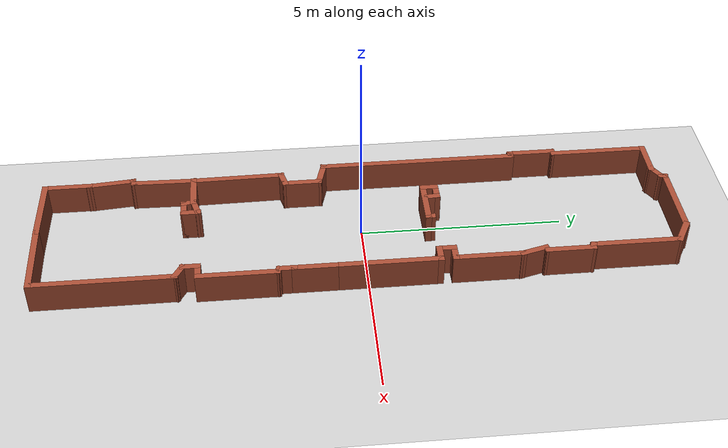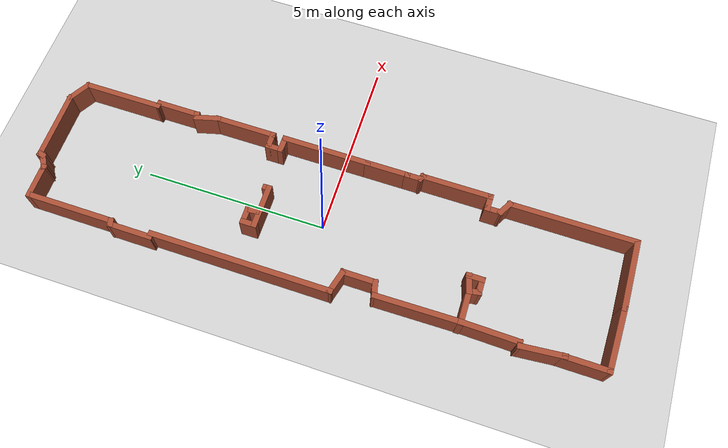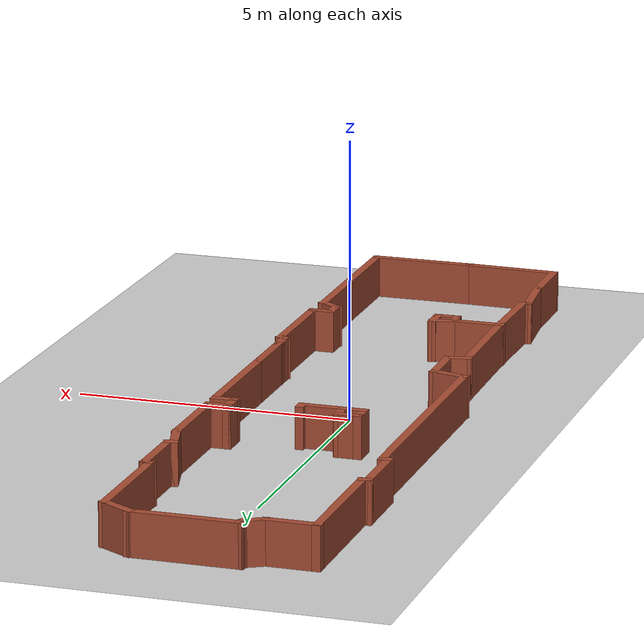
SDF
<sdf version="1.7">
 <world name="__default__">
  <gravity>0 0 -9.8</gravity>
  <magnetic_field>6e-06 2.3e-05 -4.2e-05</magnetic_field>
  <atmosphere type="adiabatic"/>
  <physics type="ode">
   <max_step_size>0.001</max_step_size>
   <real_time_factor>1</real_time_factor>
   <real_time_update_rate>1000</real_time_update_rate>
  </physics>
  <scene><ambient>0.4 0.4 0.4 1</ambient><background>0.7 0.7 0.7 1</background><shadows>1</shadows></scene>
  <audio><device>default</device></audio>
  <spherical_coordinates>
   <surface_model>EARTH_WGS84</surface_model>
   <latitude_deg>0</latitude_deg>
   <longitude_deg>0</longitude_deg>
   <elevation>0</elevation>
   <heading_deg>0</heading_deg>
  </spherical_coordinates>
  <model name="Untitled">
   <pose>0.024221 -0.02536 -1.00154 0 -0 0</pose>
   <link name="Wall_0">
    <collision name="Wall_0_Collision">
     <geometry><box><size>1.80507 0.15 1</size></box></geometry>
     <pose>0 0 1.25 0 -0 0</pose>
    </collision>
    <visual name="Wall_0_Visual">
     <pose>0 0 1.25 0 -0 0</pose>
     <geometry><box><size>1.80507 0.15 1</size></box></geometry>
     <material>
      <script><uri>file://media/materials/scripts/gazebo.material</uri><name>Gazebo/Bricks</name></script>
      <ambient>1 1 1 1</ambient>
     </material>
     <meta><layer>0</layer></meta>
    </visual>
    <pose>-0.785758 -7.81438 0 0 -0 -0.031827</pose>
   </link>
   <link name="Wall_1">
    <collision name="Wall_1_Collision">
     <geometry><box><size>2 0.15 1</size></box></geometry>
     <pose>0 0 1.25 0 -0 0</pose>
    </collision>
    <visual name="Wall_1_Visual">
     <pose>0 0 1.25 0 -0 0</pose>
     <geometry><box><size>2 0.15 1</size></box></geometry>
     <material>
      <script><uri>file://media/materials/scripts/gazebo.material</uri><name>Gazebo/Bricks</name></script>
      <ambient>1 1 1 1</ambient>
     </material>
     <meta><layer>0</layer></meta>
    </visual>
    <pose>0.966357 -7.84071 0 0 -0 0</pose>
   </link>
   <link name="Wall_10">
    <collision name="Wall_10_Collision">
     <geometry><box><size>1.25 0.15 1</size></box></geometry>
     <pose>0 0 1.25 0 -0 0</pose>
    </collision>
    <visual name="Wall_10_Visual">
     <pose>0 0 1.25 0 -0 0</pose>
     <geometry><box><size>1.25 0.15 1</size></box></geometry>
     <material>
      <script><uri>file://media/materials/scripts/gazebo.material</uri><name>Gazebo/Bricks</name></script>
      <ambient>1 1 1 1</ambient>
     </material>
     <meta><layer>0</layer></meta>
    </visual>
    <pose>1.85165 -1.16571 0 0 -0 1.5708</pose>
   </link>
   <link name="Wall_11">
    <collision name="Wall_11_Collision">
     <geometry><box><size>2.5 0.15 1</size></box></geometry>
     <pose>0 0 1.25 0 -0 0</pose>
    </collision>
    <visual name="Wall_11_Visual">
     <pose>0 0 1.25 0 -0 0</pose>
     <geometry><box><size>2.5 0.15 1</size></box></geometry>
     <material>
      <script><uri>file://media/materials/scripts/gazebo.material</uri><name>Gazebo/Bricks</name></script>
      <ambient>1 1 1 1</ambient>
     </material>
     <meta><layer>0</layer></meta>
    </visual>
    <pose>1.85165 0.559289 0 0 -0 1.5708</pose>
   </link>
   <link name="Wall_12">
    <collision name="Wall_12_Collision">
     <geometry><box><size>0.5 0.15 1</size></box></geometry>
     <pose>0 0 1.25 0 -0 0</pose>
    </collision>
    <visual name="Wall_12_Visual">
     <pose>0 0 1.25 0 -0 0</pose>
     <geometry><box><size>0.5 0.15 1</size></box></geometry>
     <material>
      <script><uri>file://media/materials/scripts/gazebo.material</uri><name>Gazebo/Bricks</name></script>
      <ambient>1 1 1 1</ambient>
     </material>
     <meta><layer>0</layer></meta>
    </visual>
    <pose>1.67665 1.73429 0 0 -0 3.14159</pose>
   </link>
   <link name="Wall_13">
    <collision name="Wall_13_Collision">
     <geometry><box><size>0.5 0.15 1</size></box></geometry>
     <pose>0 0 1.25 0 -0 0</pose>
    </collision>
    <visual name="Wall_13_Visual">
     <pose>0 0 1.25 0 -0 0</pose>
     <geometry><box><size>0.5 0.15 1</size></box></geometry>
     <material>
      <script><uri>file://media/materials/scripts/gazebo.material</uri><name>Gazebo/Bricks</name></script>
      <ambient>1 1 1 1</ambient>
     </material>
     <meta><layer>0</layer></meta>
    </visual>
    <pose>1.50165 1.90929 0 0 -0 1.5708</pose>
   </link>
   <link name="Wall_14">
    <collision name="Wall_14_Collision">
     <geometry><box><size>0.5 0.15 1</size></box></geometry>
     <pose>0 0 1.25 0 -0 0</pose>
    </collision>
    <visual name="Wall_14_Visual">
     <pose>0 0 1.25 0 -0 0</pose>
     <geometry><box><size>0.5 0.15 1</size></box></geometry>
     <material>
      <script><uri>file://media/materials/scripts/gazebo.material</uri><name>Gazebo/Bricks</name></script>
      <ambient>1 1 1 1</ambient>
     </material>
     <meta><layer>0</layer></meta>
    </visual>
    <pose>1.67665 2.08429 0 0 -0 0</pose>
   </link>
   <link name="Wall_15">
    <collision name="Wall_15_Collision">
     <geometry><box><size>1.75 0.15 1</size></box></geometry>
     <pose>0 0 1.25 0 -0 0</pose>
    </collision>
    <visual name="Wall_15_Visual">
     <pose>0 0 1.25 0 -0 0</pose>
     <geometry><box><size>1.75 0.15 1</size></box></geometry>
     <material>
      <script><uri>file://media/materials/scripts/gazebo.material</uri><name>Gazebo/Bricks</name></script>
      <ambient>1 1 1 1</ambient>
     </material>
     <meta><layer>0</layer></meta>
    </visual>
    <pose>1.85165 2.88429 0 0 -0 1.5708</pose>
   </link>
   <link name="Wall_16">
    <collision name="Wall_16_Collision">
     <geometry><box><size>0.75 0.15 1</size></box></geometry>
     <pose>0 0 1.25 0 -0 0</pose>
    </collision>
    <visual name="Wall_16_Visual">
     <pose>0 0 1.25 0 -0 0</pose>
     <geometry><box><size>0.75 0.15 1</size></box></geometry>
     <material>
      <script><uri>file://media/materials/scripts/gazebo.material</uri><name>Gazebo/Bricks</name></script>
      <ambient>1 1 1 1</ambient>
     </material>
     <meta><layer>0</layer></meta>
    </visual>
    <pose>1.774 3.97407 0 0 -0 1.8326</pose>
   </link>
   <link name="Wall_17">
    <collision name="Wall_17_Collision">
     <geometry><box><size>0.25 0.15 1</size></box></geometry>
     <pose>0 0 1.25 0 -0 0</pose>
    </collision>
    <visual name="Wall_17_Visual">
     <pose>0 0 1.25 0 -0 0</pose>
     <geometry><box><size>0.25 0.15 1</size></box></geometry>
     <material>
      <script><uri>file://media/materials/scripts/gazebo.material</uri><name>Gazebo/Bricks</name></script>
      <ambient>1 1 1 1</ambient>
     </material>
     <meta><layer>0</layer></meta>
    </visual>
    <pose>1.74465 4.27679 0 0 -0 0.261799</pose>
   </link>
   <link name="Wall_18">
    <collision name="Wall_18_Collision">
     <geometry><box><size>1.25 0.15 1</size></box></geometry>
     <pose>0 0 1.25 0 -0 0</pose>
    </collision>
    <visual name="Wall_18_Visual">
     <pose>0 0 1.25 0 -0 0</pose>
     <geometry><box><size>1.25 0.15 1</size></box></geometry>
     <material>
      <script><uri>file://media/materials/scripts/gazebo.material</uri><name>Gazebo/Bricks</name></script>
      <ambient>1 1 1 1</ambient>
     </material>
     <meta><layer>0</layer></meta>
    </visual>
    <pose>1.79295 4.83973 0 0 -0 1.5708</pose>
   </link>
   <link name="Wall_19">
    <collision name="Wall_19_Collision">
     <geometry><box><size>0.25 0.15 1</size></box></geometry>
     <pose>0 0 1.25 0 -0 0</pose>
    </collision>
    <visual name="Wall_19_Visual">
     <pose>0 0 1.25 0 -0 0</pose>
     <geometry><box><size>0.25 0.15 1</size></box></geometry>
     <material>
      <script><uri>file://media/materials/scripts/gazebo.material</uri><name>Gazebo/Bricks</name></script>
      <ambient>1 1 1 1</ambient>
     </material>
     <meta><layer>0</layer></meta>
    </visual>
    <pose>1.74465 5.40267 0 0 -0 2.87979</pose>
   </link>
   <link name="Wall_2">
    <collision name="Wall_2_Collision">
     <geometry><box><size>3.5 0.15 1</size></box></geometry>
     <pose>0 0 1.25 0 -0 0</pose>
    </collision>
    <visual name="Wall_2_Visual">
     <pose>0 0 1.25 0 -0 0</pose>
     <geometry><box><size>3.5 0.15 1</size></box></geometry>
     <material>
      <script><uri>file://media/materials/scripts/gazebo.material</uri><name>Gazebo/Bricks</name></script>
      <ambient>1 1 1 1</ambient>
     </material>
     <meta><layer>0</layer></meta>
    </visual>
    <pose>1.89136 -6.16571 0 0 -0 1.5708</pose>
   </link>
   <link name="Wall_20">
    <collision name="Wall_20_Collision">
     <geometry><box><size>2.25 0.15 1</size></box></geometry>
     <pose>0 0 1.25 0 -0 0</pose>
    </collision>
    <visual name="Wall_20_Visual">
     <pose>0 0 1.25 0 -0 0</pose>
     <geometry><box><size>2.25 0.15 1</size></box></geometry>
     <material>
      <script><uri>file://media/materials/scripts/gazebo.material</uri><name>Gazebo/Bricks</name></script>
      <ambient>1 1 1 1</ambient>
     </material>
     <meta><layer>0</layer></meta>
    </visual>
    <pose>1.69635 6.46561 0 0 -0 1.5708</pose>
   </link>
   <link name="Wall_21">
    <collision name="Wall_21_Collision">
     <geometry><box><size>0.75 0.15 1</size></box></geometry>
     <pose>0 0 1.25 0 -0 0</pose>
    </collision>
    <visual name="Wall_21_Visual">
     <pose>0 0 1.25 0 -0 0</pose>
     <geometry><box><size>0.75 0.15 1</size></box></geometry>
     <material>
      <script><uri>file://media/materials/scripts/gazebo.material</uri><name>Gazebo/Bricks</name></script>
      <ambient>1 1 1 1</ambient>
     </material>
     <meta><layer>0</layer></meta>
    </visual>
    <pose>1.43655 7.66561 0 0 -0 2.61799</pose>
   </link>
   <link name="Wall_22">
    <collision name="Wall_22_Collision">
     <geometry><box><size>2 0.15 1</size></box></geometry>
     <pose>0 0 1.25 0 -0 0</pose>
    </collision>
    <visual name="Wall_22_Visual">
     <pose>0 0 1.25 0 -0 0</pose>
     <geometry><box><size>2 0.15 1</size></box></geometry>
     <material>
      <script><uri>file://media/materials/scripts/gazebo.material</uri><name>Gazebo/Bricks</name></script>
      <ambient>1 1 1 1</ambient>
     </material>
     <meta><layer>0</layer></meta>
    </visual>
    <pose>0.251739 7.81561 0 0 -0 3.14159</pose>
   </link>
   <link name="Wall_23">
    <collision name="Wall_23_Collision">
     <geometry><box><size>0.25 0.15 1</size></box></geometry>
     <pose>0 0 1.25 0 -0 0</pose>
    </collision>
    <visual name="Wall_23_Visual">
     <pose>0 0 1.25 0 -0 0</pose>
     <geometry><box><size>0.25 0.15 1</size></box></geometry>
     <material>
      <script><uri>file://media/materials/scripts/gazebo.material</uri><name>Gazebo/Bricks</name></script>
      <ambient>1 1 1 1</ambient>
     </material>
     <meta><layer>0</layer></meta>
    </visual>
    <pose>-0.686202 7.76731 0 0 -0 -1.8326</pose>
   </link>
   <link name="Wall_24">
    <collision name="Wall_24_Collision">
     <geometry><box><size>0.5 0.15 1</size></box></geometry>
     <pose>0 0 1.25 0 -0 0</pose>
    </collision>
    <visual name="Wall_24_Visual">
     <pose>0 0 1.25 0 -0 0</pose>
     <geometry><box><size>0.5 0.15 1</size></box></geometry>
     <material>
      <script><uri>file://media/materials/scripts/gazebo.material</uri><name>Gazebo/Bricks</name></script>
      <ambient>1 1 1 1</ambient>
     </material>
     <meta><layer>0</layer></meta>
    </visual>
    <pose>-0.850697 7.63152 0 0 -0 -2.61799</pose>
   </link>
   <link name="Wall_26">
    <collision name="Wall_26_Collision">
     <geometry><box><size>1 0.15 1</size></box></geometry>
     <pose>0 0 1.25 0 -0 0</pose>
    </collision>
    <visual name="Wall_26_Visual">
     <pose>0 0 1.25 0 -0 0</pose>
     <geometry><box><size>1 0.15 1</size></box></geometry>
     <material>
      <script><uri>file://media/materials/scripts/gazebo.material</uri><name>Gazebo/Bricks</name></script>
      <ambient>1 1 1 1</ambient>
     </material>
     <meta><layer>0</layer></meta>
    </visual>
    <pose>-1.42725 7.54401 0 0 -0 3.14159</pose>
   </link>
   <link name="Wall_27">
    <collision name="Wall_27_Collision">
     <geometry><box><size>2.5 0.15 1</size></box></geometry>
     <pose>0 0 1.25 0 -0 0</pose>
    </collision>
    <visual name="Wall_27_Visual">
     <pose>0 0 1.25 0 -0 0</pose>
     <geometry><box><size>2.5 0.15 1</size></box></geometry>
     <material>
      <script><uri>file://media/materials/scripts/gazebo.material</uri><name>Gazebo/Bricks</name></script>
      <ambient>1 1 1 1</ambient>
     </material>
     <meta><layer>0</layer></meta>
    </visual>
    <pose>-1.85225 6.36902 0 0 -0 -1.5708</pose>
   </link>
   <link name="Wall_28">
    <collision name="Wall_28_Collision">
     <geometry><box><size>0.25 0.15 1</size></box></geometry>
     <pose>0 0 1.25 0 -0 0</pose>
    </collision>
    <visual name="Wall_28_Visual">
     <pose>0 0 1.25 0 -0 0</pose>
     <geometry><box><size>0.25 0.15 1</size></box></geometry>
     <material>
      <script><uri>file://media/materials/scripts/gazebo.material</uri><name>Gazebo/Bricks</name></script>
      <ambient>1 1 1 1</ambient>
     </material>
     <meta><layer>0</layer></meta>
    </visual>
    <pose>-1.90055 5.18107 0 0 -0 -2.87979</pose>
   </link>
   <link name="Wall_29">
    <collision name="Wall_29_Collision">
     <geometry><box><size>1.25 0.15 1</size></box></geometry>
     <pose>0 0 1.25 0 -0 0</pose>
    </collision>
    <visual name="Wall_29_Visual">
     <pose>0 0 1.25 0 -0 0</pose>
     <geometry><box><size>1.25 0.15 1</size></box></geometry>
     <material>
      <script><uri>file://media/materials/scripts/gazebo.material</uri><name>Gazebo/Bricks</name></script>
      <ambient>1 1 1 1</ambient>
     </material>
     <meta><layer>0</layer></meta>
    </visual>
    <pose>-1.94884 4.61813 0 0 -0 -1.5708</pose>
   </link>
   <link name="Wall_3">
    <collision name="Wall_3_Collision">
     <geometry><box><size>0.5 0.15 1</size></box></geometry>
     <pose>0 0 1.25 0 -0 0</pose>
    </collision>
    <visual name="Wall_3_Visual">
     <pose>0 0 1.25 0 -0 0</pose>
     <geometry><box><size>0.5 0.15 1</size></box></geometry>
     <material>
      <script><uri>file://media/materials/scripts/gazebo.material</uri><name>Gazebo/Bricks</name></script>
      <ambient>1 1 1 1</ambient>
     </material>
     <meta><layer>0</layer></meta>
    </visual>
    <pose>1.7398 -4.40321 0 0 -0 2.61799</pose>
   </link>
   <link name="Wall_30">
    <collision name="Wall_30_Collision">
     <geometry><box><size>0.25 0.15 1</size></box></geometry>
     <pose>0 0 1.25 0 -0 0</pose>
    </collision>
    <visual name="Wall_30_Visual">
     <pose>0 0 1.25 0 -0 0</pose>
     <geometry><box><size>0.25 0.15 1</size></box></geometry>
     <material>
      <script><uri>file://media/materials/scripts/gazebo.material</uri><name>Gazebo/Bricks</name></script>
      <ambient>1 1 1 1</ambient>
     </material>
     <meta><layer>0</layer></meta>
    </visual>
    <pose>-1.89884 4.06813 0 0 -0 0</pose>
   </link>
   <link name="Wall_31">
    <collision name="Wall_31_Collision">
     <geometry><box><size>5 0.15 1</size></box></geometry>
     <pose>0 0 1.25 0 -0 0</pose>
    </collision>
    <visual name="Wall_31_Visual">
     <pose>0 0 1.25 0 -0 0</pose>
     <geometry><box><size>5 0.15 1</size></box></geometry>
     <material>
      <script><uri>file://media/materials/scripts/gazebo.material</uri><name>Gazebo/Bricks</name></script>
      <ambient>1 1 1 1</ambient>
     </material>
     <meta><layer>0</layer></meta>
    </visual>
    <pose>-1.84884 1.64313 0 0 -0 -1.5708</pose>
   </link>
   <link name="Wall_32">
    <collision name="Wall_32_Collision">
     <geometry><box><size>0.75 0.15 1</size></box></geometry>
     <pose>0 0 1.25 0 -0 0</pose>
    </collision>
    <visual name="Wall_32_Visual">
     <pose>0 0 1.25 0 -0 0</pose>
     <geometry><box><size>0.75 0.15 1</size></box></geometry>
     <material>
      <script><uri>file://media/materials/scripts/gazebo.material</uri><name>Gazebo/Bricks</name></script>
      <ambient>1 1 1 1</ambient>
     </material>
     <meta><layer>0</layer></meta>
    </visual>
    <pose>-1.55907 -0.859512 0 0 -0 -0.261799</pose>
   </link>
   <link name="Wall_33">
    <collision name="Wall_33_Collision">
     <geometry><box><size>1 0.15 1</size></box></geometry>
     <pose>0 0 1.25 0 -0 0</pose>
    </collision>
    <visual name="Wall_33_Visual">
     <pose>0 0 1.25 0 -0 0</pose>
     <geometry><box><size>1 0.15 1</size></box></geometry>
     <material>
      <script><uri>file://media/materials/scripts/gazebo.material</uri><name>Gazebo/Bricks</name></script>
      <ambient>1 1 1 1</ambient>
     </material>
     <meta><layer>0</layer></meta>
    </visual>
    <pose>-1.26929 -1.36216 0 0 -0 -1.5708</pose>
   </link>
   <link name="Wall_34">
    <collision name="Wall_34_Collision">
     <geometry><box><size>0.5 0.15 1</size></box></geometry>
     <pose>0 0 1.25 0 -0 0</pose>
    </collision>
    <visual name="Wall_34_Visual">
     <pose>0 0 1.25 0 -0 0</pose>
     <geometry><box><size>0.5 0.15 1</size></box></geometry>
     <material>
      <script><uri>file://media/materials/scripts/gazebo.material</uri><name>Gazebo/Bricks</name></script>
      <ambient>1 1 1 1</ambient>
     </material>
     <meta><layer>0</layer></meta>
    </visual>
    <pose>-1.43833 -1.83245 0 0 -0 -2.87979</pose>
   </link>
   <link name="Wall_35">
    <collision name="Wall_35_Collision">
     <geometry><box><size>2.35963 0.15 1</size></box></geometry>
     <pose>0 0 1.25 0 -0 0</pose>
    </collision>
    <visual name="Wall_35_Visual">
     <pose>0 0 1.25 0 -0 0</pose>
     <geometry><box><size>2.35963 0.15 1</size></box></geometry>
     <material>
      <script><uri>file://media/materials/scripts/gazebo.material</uri><name>Gazebo/Bricks</name></script>
      <ambient>1 1 1 1</ambient>
     </material>
     <meta><layer>0</layer></meta>
    </visual>
    <pose>-1.59265 -2.98246 0 0 -0 -1.55748</pose>
   </link>
   <link name="Wall_4">
    <collision name="Wall_4_Collision">
     <geometry><box><size>0.5 0.15 1</size></box></geometry>
     <pose>0 0 1.25 0 -0 0</pose>
    </collision>
    <visual name="Wall_4_Visual">
     <pose>0 0 1.25 0 -0 0</pose>
     <geometry><box><size>0.5 0.15 1</size></box></geometry>
     <material>
      <script><uri>file://media/materials/scripts/gazebo.material</uri><name>Gazebo/Bricks</name></script>
      <ambient>1 1 1 1</ambient>
     </material>
     <meta><layer>0</layer></meta>
    </visual>
    <pose>1.58825 -4.14071 0 0 -0 1.5708</pose>
   </link>
   <link name="Wall_42">
    <collision name="Wall_42_Collision">
     <geometry><box><size>1.00002 0.15 1</size></box></geometry>
     <pose>0 0 1.25 0 -0 0</pose>
    </collision>
    <visual name="Wall_42_Visual">
     <pose>0 0 1.25 0 -0 0</pose>
     <geometry><box><size>1.00002 0.15 1</size></box></geometry>
     <material>
      <script><uri>file://media/materials/scripts/gazebo.material</uri><name>Gazebo/Bricks</name></script>
      <ambient>1 1 1 1</ambient>
     </material>
     <meta><layer>0</layer></meta>
    </visual>
    <pose>-1.16929 -4.08718 0 0 -0 -3.1339</pose>
   </link>
   <link name="Wall_43">
    <collision name="Wall_43_Collision">
     <geometry><box><size>1.64086 0.15 1</size></box></geometry>
     <pose>0 0 1.25 0 -0 0</pose>
    </collision>
    <visual name="Wall_43_Visual">
     <pose>0 0 1.25 0 -0 0</pose>
     <geometry><box><size>1.64086 0.15 1</size></box></geometry>
     <material>
      <script><uri>file://media/materials/scripts/gazebo.material</uri><name>Gazebo/Bricks</name></script>
      <ambient>1 1 1 1</ambient>
     </material>
     <meta><layer>0</layer></meta>
    </visual>
    <pose>-1.59265 -4.83246 0 0 -0 -1.59053</pose>
   </link>
   <link name="Wall_44">
    <collision name="Wall_44_Collision">
     <geometry><box><size>0.25 0.15 1</size></box></geometry>
     <pose>0 0 1.25 0 -0 0</pose>
    </collision>
    <visual name="Wall_44_Visual">
     <pose>0 0 1.25 0 -0 0</pose>
     <geometry><box><size>0.25 0.15 1</size></box></geometry>
     <material>
      <script><uri>file://media/materials/scripts/gazebo.material</uri><name>Gazebo/Bricks</name></script>
      <ambient>1 1 1 1</ambient>
     </material>
     <meta><layer>0</layer></meta>
    </visual>
    <pose>-1.65566 -5.59068 0 0 -0 -2.87979</pose>
   </link>
   <link name="Wall_45">
    <collision name="Wall_45_Collision">
     <geometry><box><size>1.239 0.15 1</size></box></geometry>
     <pose>0 0 1.25 0 -0 0</pose>
    </collision>
    <visual name="Wall_45_Visual">
     <pose>0 0 1.25 0 -0 0</pose>
     <geometry><box><size>1.239 0.15 1</size></box></geometry>
     <material>
      <script><uri>file://media/materials/scripts/gazebo.material</uri><name>Gazebo/Bricks</name></script>
      <ambient>1 1 1 1</ambient>
     </material>
     <meta><layer>0</layer></meta>
    </visual>
    <pose>-1.65407 -6.14583 0 0 -0 -1.47904</pose>
   </link>
   <link name="Wall_46">
    <collision name="Wall_46_Collision">
     <geometry><box><size>0.15 0.15 1</size></box></geometry>
     <pose>0 0 1.25 0 -0 0</pose>
    </collision>
    <visual name="Wall_46_Visual">
     <pose>0 0 1.25 0 -0 0</pose>
     <geometry><box><size>0.15 0.15 1</size></box></geometry>
     <material>
      <script><uri>file://media/materials/scripts/gazebo.material</uri><name>Gazebo/Bricks</name></script>
      <ambient>1 1 1 1</ambient>
     </material>
     <meta><layer>0</layer></meta>
    </visual>
    <pose>-1.60418 -6.68804 0 0 -0 0</pose>
   </link>
   <link name="Wall_47">
    <collision name="Wall_47_Collision">
     <geometry><box><size>1.25 0.15 1</size></box></geometry>
     <pose>0 0 1.25 0 -0 0</pose>
    </collision>
    <visual name="Wall_47_Visual">
     <pose>0 0 1.25 0 -0 0</pose>
     <geometry><box><size>1.25 0.15 1</size></box></geometry>
     <material>
      <script><uri>file://media/materials/scripts/gazebo.material</uri><name>Gazebo/Bricks</name></script>
      <ambient>1 1 1 1</ambient>
     </material>
     <meta><layer>0</layer></meta>
    </visual>
    <pose>-1.61287 -7.23804 0 0 -0 -1.5708</pose>
   </link>
   <link name="Wall_49">
    <collision name="Wall_49_Collision">
     <geometry><box><size>0.25 0.15 1</size></box></geometry>
     <pose>0 0 1.25 0 -0 0</pose>
    </collision>
    <visual name="Wall_49_Visual">
     <pose>0 0 1.25 0 -0 0</pose>
     <geometry><box><size>0.25 0.15 1</size></box></geometry>
     <material>
      <script><uri>file://media/materials/scripts/gazebo.material</uri><name>Gazebo/Bricks</name></script>
      <ambient>1 1 1 1</ambient>
     </material>
     <meta><layer>0</layer></meta>
    </visual>
    <pose>0.317522 1.68708 0 0 -0 -1.5708</pose>
   </link>
   <link name="Wall_5">
    <collision name="Wall_5_Collision">
     <geometry><box><size>0.5 0.15 1</size></box></geometry>
     <pose>0 0 1.25 0 -0 0</pose>
    </collision>
    <visual name="Wall_5_Visual">
     <pose>0 0 1.25 0 -0 0</pose>
     <geometry><box><size>0.5 0.15 1</size></box></geometry>
     <material>
      <script><uri>file://media/materials/scripts/gazebo.material</uri><name>Gazebo/Bricks</name></script>
      <ambient>1 1 1 1</ambient>
     </material>
     <meta><layer>0</layer></meta>
    </visual>
    <pose>1.76325 -3.96571 0 0 -0 0</pose>
   </link>
   <link name="Wall_50">
    <collision name="Wall_50_Collision">
     <geometry><box><size>1.25 0.15 1</size></box></geometry>
     <pose>0 0 1.25 0 -0 0</pose>
    </collision>
    <visual name="Wall_50_Visual">
     <pose>0 0 1.25 0 -0 0</pose>
     <geometry><box><size>1.25 0.15 1</size></box></geometry>
     <material>
      <script><uri>file://media/materials/scripts/gazebo.material</uri><name>Gazebo/Bricks</name></script>
      <ambient>1 1 1 1</ambient>
     </material>
     <meta><layer>0</layer></meta>
    </visual>
    <pose>-0.226793 1.63708 0 0 -0 3.14159</pose>
   </link>
   <link name="Wall_51">
    <collision name="Wall_51_Collision">
     <geometry><box><size>0.460822 0.15 1</size></box></geometry>
     <pose>0 0 1.25 0 -0 0</pose>
    </collision>
    <visual name="Wall_51_Visual">
     <pose>0 0 1.25 0 -0 0</pose>
     <geometry><box><size>0.460822 0.15 1</size></box></geometry>
     <material>
      <script><uri>file://media/materials/scripts/gazebo.material</uri><name>Gazebo/Bricks</name></script>
      <ambient>1 1 1 1</ambient>
     </material>
     <meta><layer>0</layer></meta>
    </visual>
    <pose>-0.782478 1.79226 0 0 -0 1.5708</pose>
   </link>
   <link name="Wall_52">
    <collision name="Wall_52_Collision">
     <geometry><box><size>0.5 0.15 1</size></box></geometry>
     <pose>0 0 1.25 0 -0 0</pose>
    </collision>
    <visual name="Wall_52_Visual">
     <pose>0 0 1.25 0 -0 0</pose>
     <geometry><box><size>0.5 0.15 1</size></box></geometry>
     <material>
      <script><uri>file://media/materials/scripts/gazebo.material</uri><name>Gazebo/Bricks</name></script>
      <ambient>1 1 1 1</ambient>
     </material>
     <meta><layer>0</layer></meta>
    </visual>
    <pose>-0.601793 1.94744 0 0 -0 0</pose>
   </link>
   <link name="Wall_53">
    <collision name="Wall_53_Collision">
     <geometry><box><size>0.393197 0.15 1</size></box></geometry>
     <pose>0 0 1.25 0 -0 0</pose>
    </collision>
    <visual name="Wall_53_Visual">
     <pose>0 0 1.25 0 -0 0</pose>
     <geometry><box><size>0.393197 0.15 1</size></box></geometry>
     <material>
      <script><uri>file://media/materials/scripts/gazebo.material</uri><name>Gazebo/Bricks</name></script>
      <ambient>1 1 1 1</ambient>
     </material>
     <meta><layer>0</layer></meta>
    </visual>
    <pose>-0.421107 1.82637 0 0 -0 -1.47715</pose>
   </link>
   <link name="Wall_56">
    <collision name="Wall_56_Collision">
     <geometry><box><size>0.564645 0.15 1</size></box></geometry>
     <pose>0 0 1.25 0 -0 0</pose>
    </collision>
    <visual name="Wall_56_Visual">
     <pose>0 0 1.25 0 -0 0</pose>
     <geometry><box><size>0.564645 0.15 1</size></box></geometry>
     <material>
      <script><uri>file://media/materials/scripts/gazebo.material</uri><name>Gazebo/Bricks</name></script>
      <ambient>1 1 1 1</ambient>
     </material>
     <meta><layer>0</layer></meta>
    </visual>
    <pose>-0.548038 -4.02756 0 0 -0 0.275265</pose>
   </link>
   <link name="Wall_57">
    <collision name="Wall_57_Collision">
     <geometry><box><size>0.5 0.15 1</size></box></geometry>
     <pose>0 0 1.25 0 -0 0</pose>
    </collision>
    <visual name="Wall_57_Visual">
     <pose>0 0 1.25 0 -0 0</pose>
     <geometry><box><size>0.5 0.15 1</size></box></geometry>
     <material>
      <script><uri>file://media/materials/scripts/gazebo.material</uri><name>Gazebo/Bricks</name></script>
      <ambient>1 1 1 1</ambient>
     </material>
     <meta><layer>0</layer></meta>
    </visual>
    <pose>-0.35179 -4.14621 0 0 -0 -1.5708</pose>
   </link>
   <link name="Wall_59">
    <collision name="Wall_59_Collision">
     <geometry><box><size>0.5 0.15 1</size></box></geometry>
     <pose>0 0 1.25 0 -0 0</pose>
    </collision>
    <visual name="Wall_59_Visual">
     <pose>0 0 1.25 0 -0 0</pose>
     <geometry><box><size>0.5 0.15 1</size></box></geometry>
     <material>
      <script><uri>file://media/materials/scripts/gazebo.material</uri><name>Gazebo/Bricks</name></script>
      <ambient>1 1 1 1</ambient>
     </material>
     <meta><layer>0</layer></meta>
    </visual>
    <pose>-0.52679 -4.32121 0 0 -0 3.14159</pose>
   </link>
   <link name="Wall_6">
    <collision name="Wall_6_Collision">
     <geometry><box><size>2 0.15 1</size></box></geometry>
     <pose>0 0 1.25 0 -0 0</pose>
    </collision>
    <visual name="Wall_6_Visual">
     <pose>0 0 1.25 0 -0 0</pose>
     <geometry><box><size>2 0.15 1</size></box></geometry>
     <material>
      <script><uri>file://media/materials/scripts/gazebo.material</uri><name>Gazebo/Bricks</name></script>
      <ambient>1 1 1 1</ambient>
     </material>
     <meta><layer>0</layer></meta>
    </visual>
    <pose>1.93825 -3.04071 0 0 -0 1.5708</pose>
   </link>
   <link name="Wall_60">
    <collision name="Wall_60_Collision">
     <geometry><box><size>0.391672 0.15 1</size></box></geometry>
     <pose>0 0 1.25 0 -0 0</pose>
    </collision>
    <visual name="Wall_60_Visual">
     <pose>0 0 1.25 0 -0 0</pose>
     <geometry><box><size>0.391672 0.15 1</size></box></geometry>
     <material>
      <script><uri>file://media/materials/scripts/gazebo.material</uri><name>Gazebo/Bricks</name></script>
      <ambient>1 1 1 1</ambient>
     </material>
     <meta><layer>0</layer></meta>
    </visual>
    <pose>-0.724673 -4.20256 0 0 -0 1.76132</pose>
   </link>
   <link name="Wall_7">
    <collision name="Wall_7_Collision">
     <geometry><box><size>0.25 0.15 1</size></box></geometry>
     <pose>0 0 1.25 0 -0 0</pose>
    </collision>
    <visual name="Wall_7_Visual">
     <pose>0 0 1.25 0 -0 0</pose>
     <geometry><box><size>0.25 0.15 1</size></box></geometry>
     <material>
      <script><uri>file://media/materials/scripts/gazebo.material</uri><name>Gazebo/Bricks</name></script>
      <ambient>1 1 1 1</ambient>
     </material>
     <meta><layer>0</layer></meta>
    </visual>
    <pose>1.89495 -2.09071 0 0 -0 2.61799</pose>
   </link>
   <link name="Wall_8">
    <collision name="Wall_8_Collision">
     <geometry><box><size>0.5 0.15 1</size></box></geometry>
     <pose>0 0 1.25 0 -0 0</pose>
    </collision>
    <visual name="Wall_8_Visual">
     <pose>0 0 1.25 0 -0 0</pose>
     <geometry><box><size>0.5 0.15 1</size></box></geometry>
     <material>
      <script><uri>file://media/materials/scripts/gazebo.material</uri><name>Gazebo/Bricks</name></script>
      <ambient>1 1 1 1</ambient>
     </material>
     <meta><layer>0</layer></meta>
    </visual>
    <pose>1.85165 -1.89071 0 0 -0 1.5708</pose>
   </link>
   <link name="Wall_9">
    <collision name="Wall_9_Collision">
     <geometry><box><size>0.15 0.15 1</size></box></geometry>
     <pose>0 0 1.25 0 -0 0</pose>
    </collision>
    <visual name="Wall_9_Visual">
     <pose>0 0 1.25 0 -0 0</pose>
     <geometry><box><size>0.15 0.15 1</size></box></geometry>
     <material>
      <script><uri>file://media/materials/scripts/gazebo.material</uri><name>Gazebo/Bricks</name></script>
      <ambient>1 1 1 1</ambient>
     </material>
     <meta><layer>0</layer></meta>
    </visual>
    <pose>1.85165 -1.71571 0 0 -0 0</pose>
   </link>
   <static>1</static>
  </model>
  <model name="ground_plane">
   <static>1</static>
   <link name="link">
    <collision name="collision">
     <geometry><plane><normal>0 0 1</normal><size>100 100</size></plane></geometry>
     <surface><friction><ode><mu>100</mu><mu2>50</mu2></ode></friction></surface>
    </collision>
    <visual name="visual">
     <cast_shadows>0</cast_shadows>
     <geometry><plane><normal>0 0 1</normal><size>100 100</size></plane></geometry>
     <material>
      <script><uri>file://media/materials/scripts/gazebo.material</uri><name>Gazebo/Grey</name></script>
     </material>
    </visual>
   </link>
   <pose>2.53813 0.597805 0 0 -0 0</pose>
  </model>
  <light name="user_directional_light_0" type="directional">
   <pose>-6.98205 14.3958 1 0 -0 0</pose>
   <diffuse>0.5 0.5 0.5 1</diffuse>
   <specular>0.1 0.1 0.1 1</specular>
   <direction>0.1 0.1 -0.9</direction>
   <attenuation>
    <range>20</range>
    <constant>0.5</constant>
    <linear>0.01</linear>
    <quadratic>0.001</quadratic>
   </attenuation>
   <spot><inner_angle>0</inner_angle><outer_angle>0</outer_angle><falloff>0</falloff></spot>
  </light>
 </world>
</sdf>
